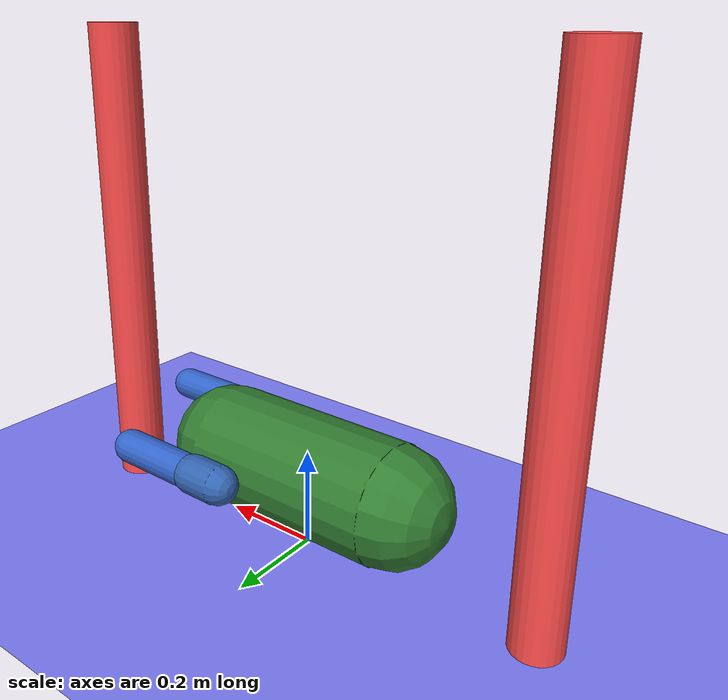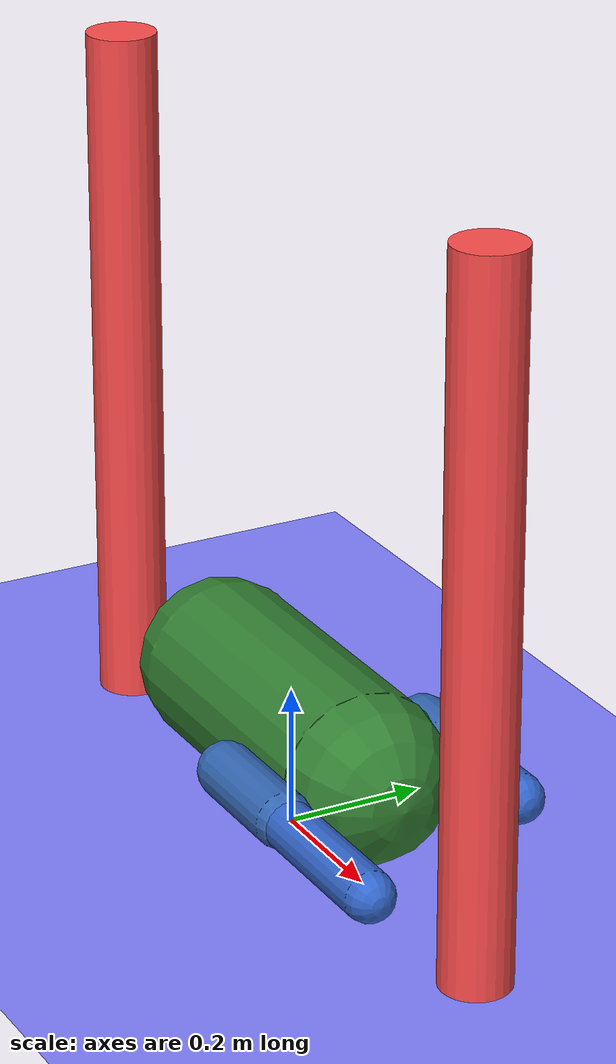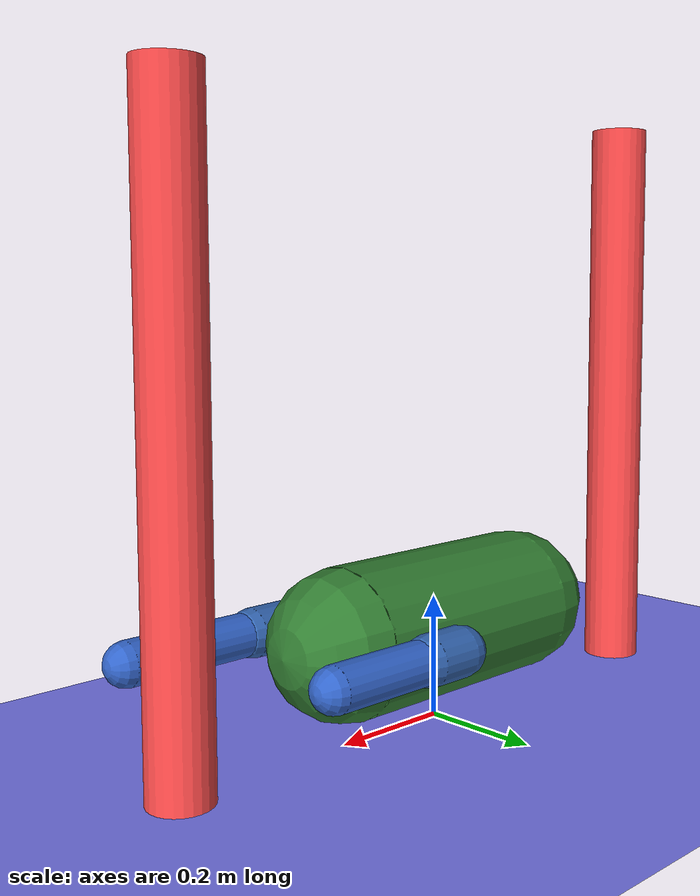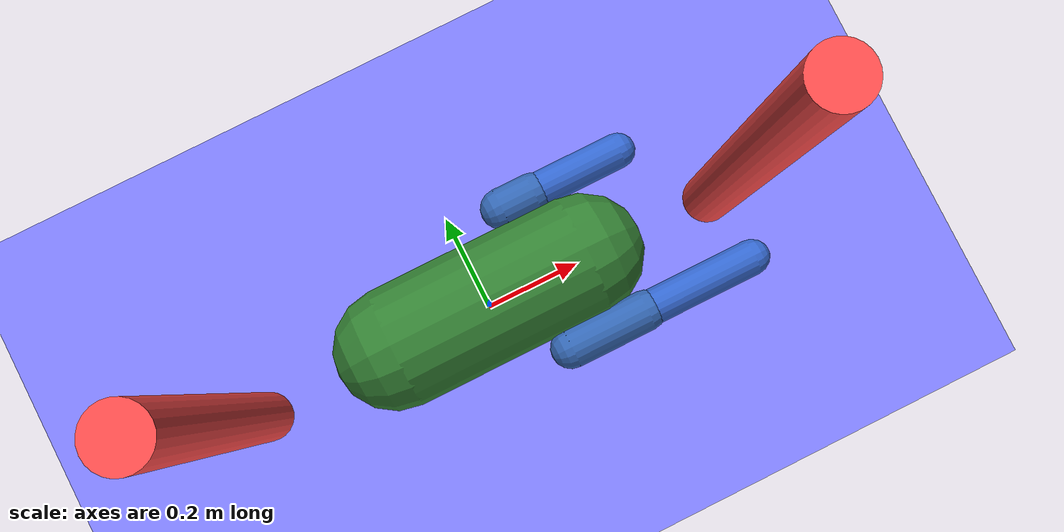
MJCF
<mujoco model="two_poles_solid_colors">

  <compiler angle="degree" coordinate="local" inertiafromgeom="true" autolimits="true" />
  <option timestep="0.01" integrator="RK4" gravity="0 0 -9.81" />

  <default>
    <geom friction="0 0 0" />
  </default>

  <worldbody>

    <light name="sun" pos="0 0 5" dir="0 0 -1" diffuse="1 1 1" specular="0.1 0.1 0.1" directional="true" cutoff="100" />

    <geom name="ground" type="plane" pos="0 0 0" size="1 1 0.1" rgba="0.5 0.5 1 1" />

    <geom name="pole_left" type="cylinder" pos="-0.5 0 0.5" size="0.05 0.5" rgba="1 0.3 0.3 1" />

    <geom name="pole_right" type="cylinder" pos=" 0.5 0 0.5" size="0.05 0.5" rgba="1 0.3 0.3 1" />
  </worldbody>
<include file="TurtleRobot.xml" /></mujoco>

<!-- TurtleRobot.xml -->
<mujoco model="paddle_turtle_body">

    <compiler angle="degree" coordinate="local" />
    <option timestep="0.002" gravity="0 0 -9.81" iterations="50" integrator="RK4" />

    <default>
        <geom condim="3" conaffinity="0" density="400" friction="1 0.5 0.5" margin="0.01" rgba="0.3 0.6 0.3 1" />
        <joint armature="1e-5" damping="1" limited="true" />
    </default>

    <worldbody>
        <body name="turtle" pos="0 0 0.08">
            <joint name="root_free" type="free" />

            <geom name="shell" type="capsule" fromto="-0.20 0 0.08  0.20 0 0.08" size="0.12" rgba="0.2 0.5 0.2 1" />

            <body name="flipper_L_upper" pos="0.10 0.15 0.08">
                <joint name="shoulder_L" type="hinge" axis="0 -1 0" range="-60 60" />
                <geom name="flipper_L_upper_geom" type="capsule" fromto="0 0 0  0.068 0 0" size="0.04" rgba="0.2 0.4 0.7 1" />

                <body name="flipper_L_fore" pos="0.068 0 0">
                    <joint name="elbow_L" type="hinge" axis="0 -1 0" range="-90 0" />
                    <geom name="flipper_L_fore_geom" type="capsule" fromto="0 0 0  0.184 0 0" size="0.035" rgba="0.2 0.4 0.8 1" />
                </body>
            </body>

            <body name="flipper_R_upper" pos="0.10 -0.15 0.08">
                <joint name="shoulder_R" type="hinge" axis="0 1 0" range="-60 60" />
                <geom name="flipper_R_upper_geom" type="capsule" fromto="0 0 0  0.160 0 0" size="0.04" rgba="0.2 0.4 0.7 1" />

                <body name="flipper_R_fore" pos="0.160 0 0">
                    <joint name="elbow_R" type="hinge" axis="0 1 0" range="-90 0" />
                    <geom name="flipper_R_fore_geom" type="capsule" fromto="0 0 0  0.229 0 0" size="0.035" rgba="0.2 0.4 0.8 1" />
                </body>
            </body>

            <site name="shell_center" pos="0 0 0.08" size="0.01" />
        </body>

        <camera name="follow" mode="trackcom" pos="0 -2 0.5" xyaxes="1 0 0 0 0 1" />
    </worldbody>

    <actuator>
        <motor name="motor_shoulder_L" joint="shoulder_L" gear="100" ctrlrange="-1 1" ctrllimited="true" />
        <motor name="motor_elbow_L" joint="elbow_L" gear="100" ctrlrange="-1 1" ctrllimited="true" />

        <motor name="motor_shoulder_R" joint="shoulder_R" gear="100" ctrlrange="-1 1" ctrllimited="true" />
        <motor name="motor_elbow_R" joint="elbow_R" gear="100" ctrlrange="-1 1" ctrllimited="true" />
    </actuator>

    <sensor>
        <accelerometer site="shell_center" />
        <gyro site="shell_center" />
    </sensor>
</mujoco>
